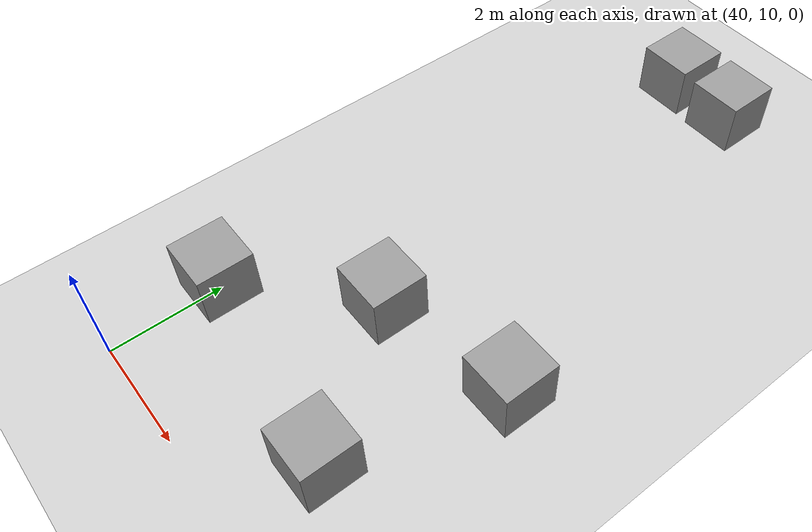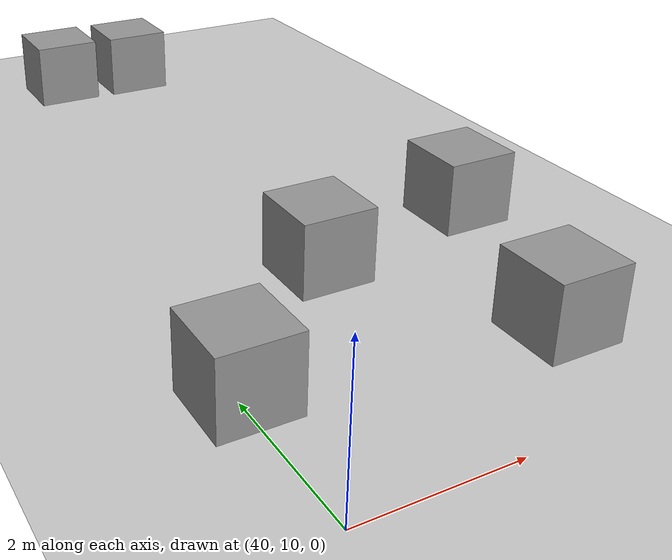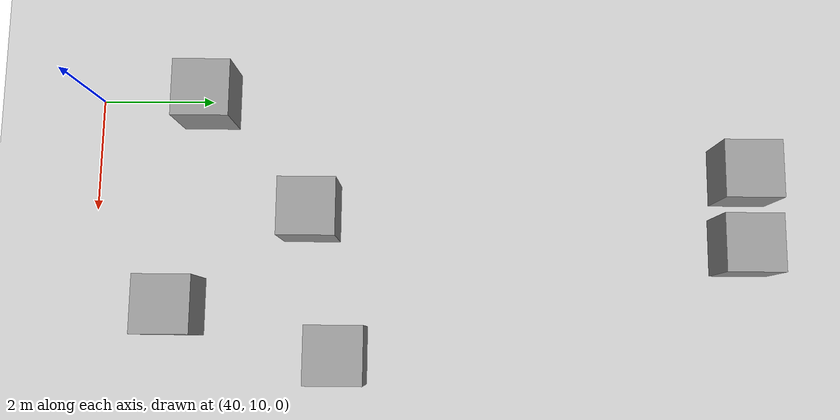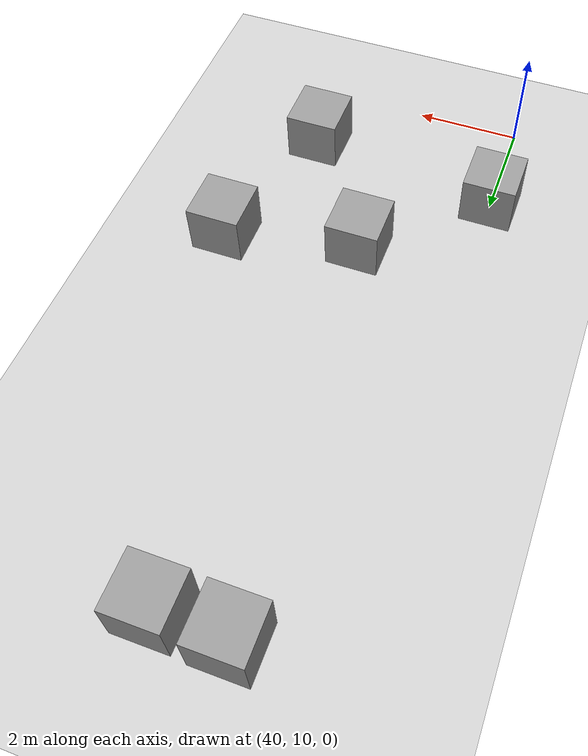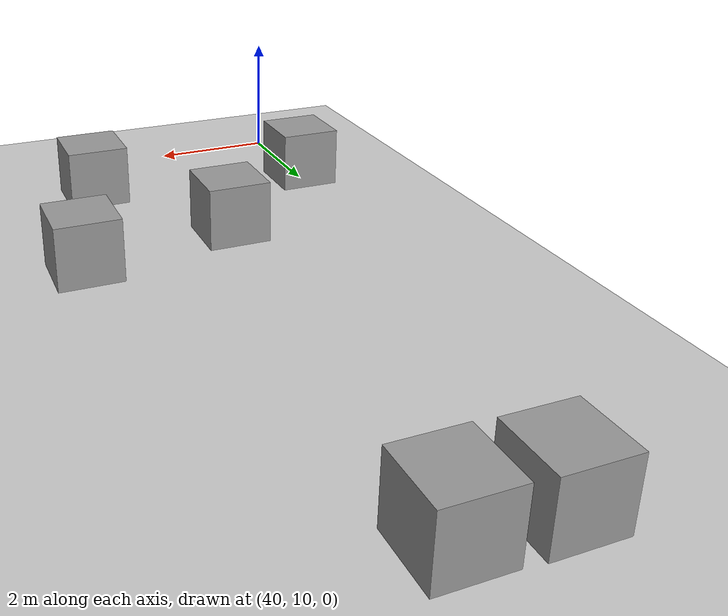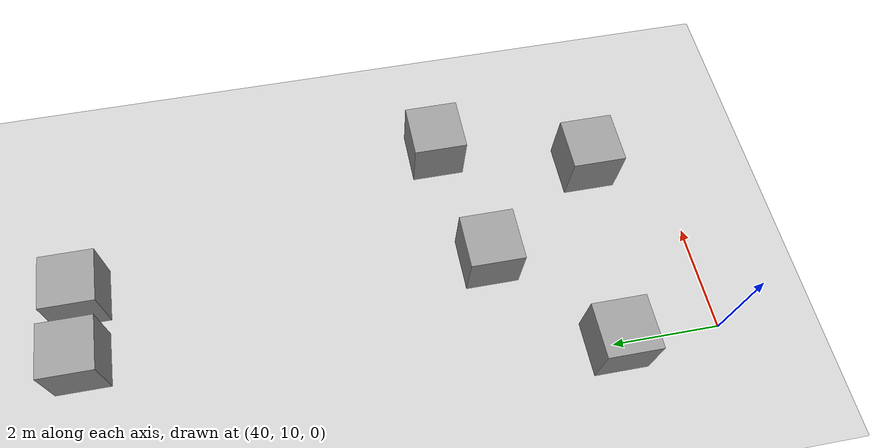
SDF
<sdf version="1.6">
 <world name="default">
  <model name="ground_plane">
   <static>1</static>
   <link name="link">
    <collision name="collision">
     <geometry><plane><normal>0 0 1</normal><size>100 100</size></plane></geometry>
     <surface><friction><ode><mu>100</mu><mu2>50</mu2></ode></friction></surface>
    </collision>
    <visual name="visual">
     <cast_shadows>0</cast_shadows>
     <geometry><plane><normal>0 0 1</normal><size>100 100</size></plane></geometry>
     <material>
      <script><uri>file://media/materials/scripts/gazebo.material</uri><name>Gazebo/Grey</name></script>
     </material>
    </visual>
   </link>
  </model>
  <model name="unit_box_22">
   <pose>44.5487 14.3873 0.5005 -0 -0 -0</pose>
   <link name="link">
    <inertial>
     <mass>1</mass>
     <inertia>
      <ixx>0.166667</ixx>
      <ixy>0</ixy>
      <ixz>0</ixz>
      <iyy>0.166667</iyy>
      <iyz>0</iyz>
      <izz>0.166667</izz>
     </inertia>
    </inertial>
    <collision name="collision"><geometry><box><size>1 1 1</size></box></geometry></collision>
    <visual name="visual">
     <geometry><box><size>1 1 1</size></box></geometry>
     <material>
      <script><name>Gazebo/Grey</name><uri>file://media/materials/scripts/gazebo.material</uri></script>
     </material>
    </visual>
   </link>
  </model>
  <model name="unit_box_28">
   <pose>43.7235 11.4992 0.5005 -0 -0 -0</pose>
   <link name="link">
    <inertial>
     <mass>1</mass>
     <inertia>
      <ixx>0.166667</ixx>
      <ixy>0</ixy>
      <ixz>0</ixz>
      <iyy>0.166667</iyy>
      <iyz>0</iyz>
      <izz>0.166667</izz>
     </inertia>
    </inertial>
    <collision name="collision"><geometry><box><size>1 1 1</size></box></geometry></collision>
    <visual name="visual">
     <geometry><box><size>1 1 1</size></box></geometry>
     <material>
      <script><name>Gazebo/Grey</name><uri>file://media/materials/scripts/gazebo.material</uri></script>
     </material>
    </visual>
   </link>
  </model>
  <model name="unit_box_28_clone">
   <pose>42.0519 13.8742 0.5005 -0 -0 -0</pose>
   <link name="link">
    <inertial>
     <mass>1</mass>
     <inertia>
      <ixx>0.166667</ixx>
      <ixy>0</ixy>
      <ixz>0</ixz>
      <iyy>0.166667</iyy>
      <iyz>0</iyz>
      <izz>0.166667</izz>
     </inertia>
    </inertial>
    <collision name="collision"><geometry><box><size>1 1 1</size></box></geometry></collision>
    <visual name="visual">
     <geometry><box><size>1 1 1</size></box></geometry>
     <material>
      <script><name>Gazebo/Grey</name><uri>file://media/materials/scripts/gazebo.material</uri></script>
     </material>
    </visual>
   </link>
  </model>
  <model name="unit_box_28_clone_0">
   <pose>40 12 0.5005 -0 -0 -0</pose>
   <link name="link">
    <inertial>
     <mass>1</mass>
     <inertia>
      <ixx>0.166667</ixx>
      <ixy>0</ixy>
      <ixz>0</ixz>
      <iyy>0.166667</iyy>
      <iyz>0</iyz>
      <izz>0.166667</izz>
     </inertia>
    </inertial>
    <collision name="collision"><geometry><box><size>1 1 1</size></box></geometry></collision>
    <visual name="visual">
     <geometry><box><size>1 1 1</size></box></geometry>
     <material>
      <script><name>Gazebo/Grey</name><uri>file://media/materials/scripts/gazebo.material</uri></script>
     </material>
    </visual>
   </link>
  </model>
  <model name="unit_box_28_clone_50_clone_5">
   <pose>42.6085 21.4379 0.5 0 -0 0</pose>
   <link name="link">
    <inertial>
     <mass>1</mass>
     <inertia>
      <ixx>0.166667</ixx>
      <ixy>0</ixy>
      <ixz>0</ixz>
      <iyy>0.166667</iyy>
      <iyz>0</iyz>
      <izz>0.166667</izz>
     </inertia>
    </inertial>
    <collision name="collision"><geometry><box><size>1 1 1</size></box></geometry></collision>
    <visual name="visual">
     <geometry><box><size>1 1 1</size></box></geometry>
     <material>
      <script><name>Gazebo/Grey</name><uri>file://media/materials/scripts/gazebo.material</uri></script>
     </material>
    </visual>
   </link>
  </model>
  <model name="unit_box_28_clone_50_clone_6">
   <pose>41.3445 21.4702 0.5 0 -0 0</pose>
   <link name="link">
    <inertial>
     <mass>1</mass>
     <inertia>
      <ixx>0.166667</ixx>
      <ixy>0</ixy>
      <ixz>0</ixz>
      <iyy>0.166667</iyy>
      <iyz>0</iyz>
      <izz>0.166667</izz>
     </inertia>
    </inertial>
    <collision name="collision"><geometry><box><size>1 1 1</size></box></geometry></collision>
    <visual name="visual">
     <geometry><box><size>1 1 1</size></box></geometry>
     <material>
      <script><name>Gazebo/Grey</name><uri>file://media/materials/scripts/gazebo.material</uri></script>
     </material>
    </visual>
   </link>
  </model>
 </world>
</sdf>
